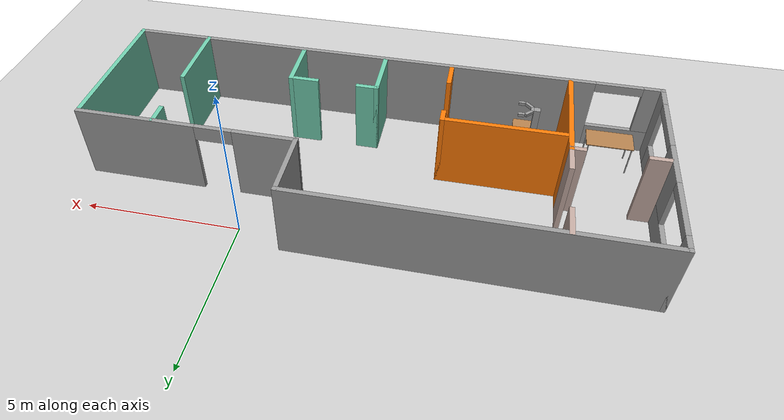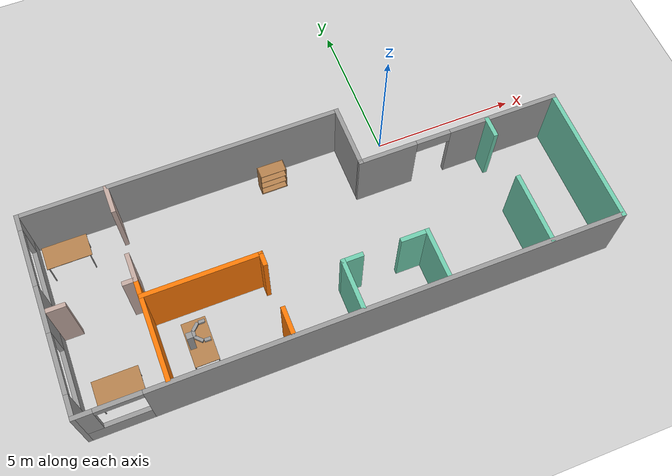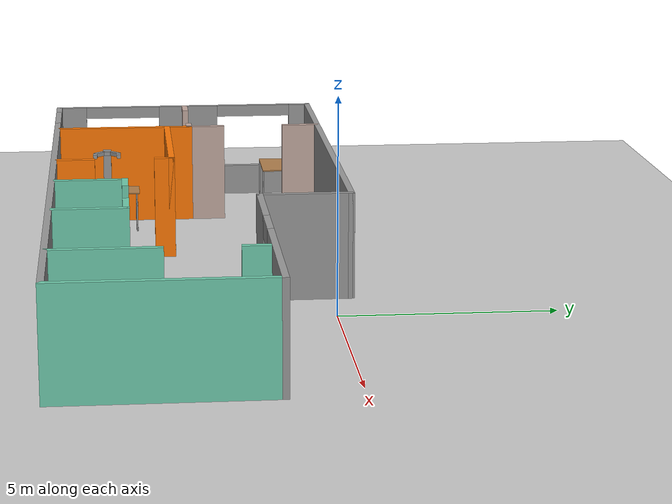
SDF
<sdf version="1.6">
 <world name="default">
  <model name="ground_plane">
   <static>1</static>
   <link name="link">
    <collision name="collision">
     <geometry><plane><normal>0 0 1</normal><size>100 100</size></plane></geometry>
     <surface>
      <contact><collide_bitmask>65535</collide_bitmask></contact>
      <friction><ode><mu>100</mu><mu2>50</mu2></ode></friction>
     </surface>
    </collision>
    <visual name="visual">
     <cast_shadows>0</cast_shadows>
     <geometry><plane><normal>0 0 1</normal><size>100 100</size></plane></geometry>
     <material>
      <script><uri>file://media/materials/scripts/gazebo.material</uri><name>Gazebo/Grey</name></script>
     </material>
    </visual>
   </link>
  </model>
  <model name="Building">
   <pose>-3.41597 -2.95014 0 0 -0 0</pose>
   <link name="Wall_12">
    <collision name="Wall_12_Collision">
     <geometry><box><size>3.5 0.15 2.5</size></box></geometry>
     <pose>0 0 1.25 0 -0 0</pose>
    </collision>
    <visual name="Wall_12_Visual">
     <pose>0 0 1.25 0 -0 0</pose>
     <geometry><box><size>3.5 0.15 2.5</size></box></geometry>
     <material>
      <script><uri>file://media/materials/scripts/gazebo.material</uri><name>Gazebo/Grey</name></script>
      <ambient>0.996078 0.47451 0.0196078 1</ambient>
     </material>
     <meta><layer>0</layer></meta>
    </visual>
    <pose>-6.04441 -1.64552 0 0 0 -1.5708</pose>
   </link>
   <link name="Wall_16">
    <collision name="Wall_16_Collision">
     <geometry><box><size>11 0.15 2.5</size></box></geometry>
     <pose>0 0 1.25 0 -0 0</pose>
    </collision>
    <visual name="Wall_16_Visual">
     <pose>0 0 1.25 0 -0 0</pose>
     <geometry><box><size>11 0.15 2.5</size></box></geometry>
     <material>
      <script><uri>file://media/materials/scripts/gazebo.material</uri><name>Gazebo/Grey</name></script>
      <ambient>0.462745 0.490196 0.45098 1</ambient>
     </material>
     <meta><layer>0</layer></meta>
    </visual>
    <pose>-3.5 3.425 0 0 -0 0</pose>
   </link>
   <link name="Wall_17">
    <collision name="Wall_17_Collision">
     <geometry><box><size>2.25 0.15 2.5</size></box></geometry>
     <pose>0 0 1.25 0 -0 0</pose>
    </collision>
    <visual name="Wall_17_Visual">
     <pose>0 0 1.25 0 -0 0</pose>
     <geometry><box><size>2.25 0.15 2.5</size></box></geometry>
     <material>
      <script><uri>file://media/materials/scripts/gazebo.material</uri><name>Gazebo/Grey</name></script>
      <ambient>0.462745 0.490196 0.45098 1</ambient>
     </material>
     <meta><layer>0</layer></meta>
    </visual>
    <pose>1.92477 2.37476 0 0 0 -1.57101</pose>
   </link>
   <link name="Wall_18">
    <pose>5.42455 1.32452 0 0 -0 0</pose>
    <visual name="Wall_18_Visual_0">
     <pose>-2.54562 0 1.25 0 -0 0</pose>
     <geometry><box><size>2.05876 0.15 2.5</size></box></geometry>
     <material>
      <script><uri>file://media/materials/scripts/gazebo.material</uri><name>Gazebo/Grey</name></script>
      <ambient>0.462745 0.490196 0.45098 1</ambient>
     </material>
     <meta><layer>0</layer></meta>
    </visual>
    <collision name="Wall_18_Collision_0">
     <geometry><box><size>2.05876 0.15 2.5</size></box></geometry>
     <pose>-2.54562 0 1.25 0 -0 0</pose>
    </collision>
    <visual name="Wall_18_Visual_1">
     <pose>1.62938 0 1.25 0 -0 0</pose>
     <geometry><box><size>3.89124 0.15 2.5</size></box></geometry>
     <material>
      <script><uri>file://media/materials/scripts/gazebo.material</uri><name>Gazebo/Grey</name></script>
      <ambient>0.462745 0.490196 0.45098 1</ambient>
     </material>
     <meta><layer>0</layer></meta>
    </visual>
    <collision name="Wall_18_Collision_1">
     <geometry><box><size>3.89124 0.15 2.5</size></box></geometry>
     <pose>1.62938 0 1.25 0 -0 0</pose>
    </collision>
    <visual name="Wall_18_Visual_2">
     <pose>-0.916243 0 2.25 0 -0 0</pose>
     <geometry><box><size>1.2 0.15 0.5</size></box></geometry>
     <material>
      <script><uri>file://media/materials/scripts/gazebo.material</uri><name>Gazebo/Grey</name></script>
      <ambient>0.462745 0.490196 0.45098 1</ambient>
     </material>
     <meta><layer>0</layer></meta>
    </visual>
    <collision name="Wall_18_Collision_2">
     <geometry><box><size>1.2 0.15 0.5</size></box></geometry>
     <pose>-0.916243 0 2.25 0 -0 0</pose>
    </collision>
   </link>
   <link name="Wall_20">
    <collision name="Wall_20_Collision">
     <geometry><box><size>4 0.15 2.5</size></box></geometry>
     <pose>0 0 1.25 0 -0 0</pose>
    </collision>
    <visual name="Wall_20_Visual">
     <pose>0 0 1.25 0 -0 0</pose>
     <geometry><box><size>4 0.15 2.5</size></box></geometry>
     <material>
      <script><uri>file://media/materials/scripts/gazebo.material</uri><name>Gazebo/Grey</name></script>
      <ambient>0.996078 0.47451 0.0196078 1</ambient>
     </material>
     <meta><layer>0</layer></meta>
    </visual>
    <pose>-4.10848 -0.552329 0 0 -0 0</pose>
   </link>
   <link name="Wall_23">
    <collision name="Wall_23_Collision">
     <geometry><box><size>1.75 0.15 2.5</size></box></geometry>
     <pose>0 0 1.25 0 -0 0</pose>
    </collision>
    <visual name="Wall_23_Visual">
     <pose>0 0 1.25 0 -0 0</pose>
     <geometry><box><size>1.75 0.15 2.5</size></box></geometry>
     <material>
      <script><uri>file://media/materials/scripts/gazebo.material</uri><name>Gazebo/Grey</name></script>
      <ambient>0.435294 0.796078 0.67451 1</ambient>
     </material>
     <meta><layer>0</layer></meta>
    </visual>
    <pose>0.087622 -2.51323 0 0 0 -1.5708</pose>
   </link>
   <link name="Wall_32">
    <collision name="Wall_32_Collision">
     <geometry><box><size>2.5 0.15 2.5</size></box></geometry>
     <pose>0 0 1.25 0 -0 0</pose>
    </collision>
    <visual name="Wall_32_Visual">
     <pose>0 0 1.25 0 -0 0</pose>
     <geometry><box><size>2.5 0.15 2.5</size></box></geometry>
     <material>
      <script><uri>file://media/materials/scripts/gazebo.material</uri><name>Gazebo/Grey</name></script>
      <ambient>0.435294 0.796078 0.67451 1</ambient>
     </material>
     <meta><layer>0</layer></meta>
    </visual>
    <pose>6.4415 -2.22703 0 0 -0 1.5708</pose>
   </link>
   <link name="Wall_34">
    <collision name="Wall_34_Collision">
     <geometry><box><size>1.75 0.15 2.5</size></box></geometry>
     <pose>0 0 1.25 0 -0 0</pose>
    </collision>
    <visual name="Wall_34_Visual">
     <pose>0 0 1.25 0 -0 0</pose>
     <geometry><box><size>1.75 0.15 2.5</size></box></geometry>
     <material>
      <script><uri>file://media/materials/scripts/gazebo.material</uri><name>Gazebo/Grey</name></script>
      <ambient>0.435294 0.796078 0.67451 1</ambient>
     </material>
     <meta><layer>0</layer></meta>
    </visual>
    <pose>2.93762 -2.51323 0 0 0 -1.5708</pose>
   </link>
   <link name="Wall_36">
    <collision name="Wall_36_Collision">
     <geometry><box><size>0.75 0.15 2.5</size></box></geometry>
     <pose>0 0 1.25 0 -0 0</pose>
    </collision>
    <visual name="Wall_36_Visual">
     <pose>0 0 1.25 0 -0 0</pose>
     <geometry><box><size>0.75 0.15 2.5</size></box></geometry>
     <material>
      <script><uri>file://media/materials/scripts/gazebo.material</uri><name>Gazebo/Grey</name></script>
      <ambient>0.435294 0.796078 0.67451 1</ambient>
     </material>
     <meta><layer>0</layer></meta>
    </visual>
    <pose>6.45579 0.997622 0 0 -0 1.5708</pose>
   </link>
   <link name="Wall_38">
    <collision name="Wall_38_Collision">
     <geometry><box><size>0.75 0.15 2.5</size></box></geometry>
     <pose>0 0 1.25 0 -0 0</pose>
    </collision>
    <visual name="Wall_38_Visual">
     <pose>0 0 1.25 0 -0 0</pose>
     <geometry><box><size>0.75 0.15 2.5</size></box></geometry>
     <material>
      <script><uri>file://media/materials/scripts/gazebo.material</uri><name>Gazebo/Grey</name></script>
      <ambient>0.435294 0.796078 0.67451 1</ambient>
     </material>
     <meta><layer>0</layer></meta>
    </visual>
    <pose>0.387622 -1.71323 0 0 -0 0</pose>
   </link>
   <link name="Wall_40">
    <collision name="Wall_40_Collision">
     <geometry><box><size>1 0.15 2.5</size></box></geometry>
     <pose>0 0 1.25 0 -0 0</pose>
    </collision>
    <visual name="Wall_40_Visual">
     <pose>0 0 1.25 0 -0 0</pose>
     <geometry><box><size>1 0.15 2.5</size></box></geometry>
     <material>
      <script><uri>file://media/materials/scripts/gazebo.material</uri><name>Gazebo/Grey</name></script>
      <ambient>0.435294 0.796078 0.67451 1</ambient>
     </material>
     <meta><layer>0</layer></meta>
    </visual>
    <pose>2.51262 -1.71323 0 0 -0 3.14159</pose>
   </link>
   <link name="Wall_43">
    <collision name="Wall_43_Collision">
     <geometry><box><size>0.5 0.15 2.5</size></box></geometry>
     <pose>0 0 1.25 0 -0 0</pose>
    </collision>
    <visual name="Wall_43_Visual">
     <pose>0 0 1.25 0 -0 0</pose>
     <geometry><box><size>0.5 0.15 2.5</size></box></geometry>
     <material>
      <script><uri>file://media/materials/scripts/gazebo.material</uri><name>Gazebo/Grey</name></script>
      <ambient>0.996078 0.47451 0.0196078 1</ambient>
     </material>
     <meta><layer>0</layer></meta>
    </visual>
    <pose>-2.18348 -0.727329 0 0 0 -1.5708</pose>
   </link>
   <link name="Wall_45">
    <collision name="Wall_45_Collision">
     <geometry><box><size>1 0.15 2.5</size></box></geometry>
     <pose>0 0 1.25 0 -0 0</pose>
    </collision>
    <visual name="Wall_45_Visual">
     <pose>0 0 1.25 0 -0 0</pose>
     <geometry><box><size>1 0.15 2.5</size></box></geometry>
     <material>
      <script><uri>file://media/materials/scripts/gazebo.material</uri><name>Gazebo/Grey</name></script>
      <ambient>0.996078 0.47451 0.0196078 1</ambient>
     </material>
     <meta><layer>0</layer></meta>
    </visual>
    <pose>-2.16345 -2.92927 0 0 0 -1.5708</pose>
   </link>
   <link name="Wall_47">
    <collision name="Wall_47_Collision">
     <geometry><box><size>0.5 0.15 2.5</size></box></geometry>
     <pose>0 0 1.25 0 -0 0</pose>
    </collision>
    <visual name="Wall_47_Visual">
     <pose>0 0 1.25 0 -0 0</pose>
     <geometry><box><size>0.5 0.15 2.5</size></box></geometry>
     <material>
      <script><uri>file://media/materials/scripts/gazebo.material</uri><name>Gazebo/Grey</name></script>
      <ambient>0.760784 0.662745 0.627451 1</ambient>
     </material>
     <meta><layer>0</layer></meta>
    </visual>
    <pose>-6.21941 0.029484 0 0 -0 3.14159</pose>
   </link>
   <link name="Wall_49">
    <collision name="Wall_49_Collision">
     <geometry><box><size>0.75 0.15 2.5</size></box></geometry>
     <pose>0 0 1.25 0 -0 0</pose>
    </collision>
    <visual name="Wall_49_Visual">
     <pose>0 0 1.25 0 -0 0</pose>
     <geometry><box><size>0.75 0.15 2.5</size></box></geometry>
     <material>
      <script><uri>file://media/materials/scripts/gazebo.material</uri><name>Gazebo/Grey</name></script>
      <ambient>0.760784 0.662745 0.627451 1</ambient>
     </material>
     <meta><layer>0</layer></meta>
    </visual>
    <pose>-8.58628 0.017111 0 0 -0 3.14159</pose>
   </link>
   <link name="Wall_51">
    <collision name="Wall_51_Collision">
     <geometry><box><size>1 0.15 2.5</size></box></geometry>
     <pose>0 0 1.25 0 -0 0</pose>
    </collision>
    <visual name="Wall_51_Visual">
     <pose>0 0 1.25 0 -0 0</pose>
     <geometry><box><size>1 0.15 2.5</size></box></geometry>
     <material>
      <script><uri>file://media/materials/scripts/gazebo.material</uri><name>Gazebo/Grey</name></script>
      <ambient>0.760784 0.662745 0.627451 1</ambient>
     </material>
     <meta><layer>0</layer></meta>
    </visual>
    <pose>-6.04441 0.454485 0 0 -0 1.5708</pose>
   </link>
   <link name="Wall_55">
    <collision name="Wall_55_Collision">
     <geometry><box><size>1 0.15 2.5</size></box></geometry>
     <pose>0 0 1.25 0 -0 0</pose>
    </collision>
    <visual name="Wall_55_Visual">
     <pose>0 0 1.25 0 -0 0</pose>
     <geometry><box><size>1 0.15 2.5</size></box></geometry>
     <material>
      <script><uri>file://media/materials/scripts/gazebo.material</uri><name>Gazebo/Grey</name></script>
      <ambient>0.760784 0.662745 0.627451 1</ambient>
     </material>
     <meta><layer>0</layer></meta>
    </visual>
    <pose>-6.02797 2.98846 0 0 0 -1.5708</pose>
   </link>
   <link name="Wall_6">
    <collision name="Wall_6_Collision">
     <geometry><box><size>4.75 0.15 2.5</size></box></geometry>
     <pose>0 0 1.25 0 -0 0</pose>
    </collision>
    <visual name="Wall_6_Visual">
     <pose>0 0 1.25 0 -0 0</pose>
     <geometry><box><size>4.75 0.15 2.5</size></box></geometry>
     <material>
      <script><uri>file://media/materials/scripts/gazebo.material</uri><name>Gazebo/Grey</name></script>
      <ambient>0.435294 0.796078 0.67451 1</ambient>
     </material>
     <meta><layer>0</layer></meta>
    </visual>
    <pose>8.925 -1.125 0 0 0 -1.5708</pose>
   </link>
   <link name="Wall_8">
    <pose>0 -3.425 0 0 -0 3.14159</pose>
    <visual name="Wall_8_Visual_0">
     <pose>-1.08419 0 1.25 0 -0 0</pose>
     <geometry><box><size>15.8316 0.15 2.5</size></box></geometry>
     <material>
      <script><uri>file://media/materials/scripts/gazebo.material</uri><name>Gazebo/Grey</name></script>
      <ambient>0.462745 0.490196 0.45098 1</ambient>
     </material>
     <meta><layer>0</layer></meta>
    </visual>
    <collision name="Wall_8_Collision_0">
     <geometry><box><size>15.8316 0.15 2.5</size></box></geometry>
     <pose>-1.08419 0 1.25 0 -0 0</pose>
    </collision>
    <visual name="Wall_8_Visual_1">
     <pose>7.91581 0 0.4 0 -0 0</pose>
     <geometry><box><size>2.16839 0.15 0.8</size></box></geometry>
     <material>
      <script><uri>file://media/materials/scripts/gazebo.material</uri><name>Gazebo/Grey</name></script>
      <ambient>0.462745 0.490196 0.45098 1</ambient>
     </material>
     <meta><layer>0</layer></meta>
    </visual>
    <collision name="Wall_8_Collision_1">
     <geometry><box><size>2.16839 0.15 0.8</size></box></geometry>
     <pose>7.91581 0 0.4 0 -0 0</pose>
    </collision>
    <visual name="Wall_8_Visual_2">
     <pose>8.66581 0 1.65 0 -0 0</pose>
     <geometry><box><size>0.668389 0.15 1.7</size></box></geometry>
     <material>
      <script><uri>file://media/materials/scripts/gazebo.material</uri><name>Gazebo/Grey</name></script>
      <ambient>0.462745 0.490196 0.45098 1</ambient>
     </material>
     <meta><layer>0</layer></meta>
    </visual>
    <collision name="Wall_8_Collision_2">
     <geometry><box><size>0.668389 0.15 1.7</size></box></geometry>
     <pose>8.66581 0 1.65 0 -0 0</pose>
    </collision>
    <visual name="Wall_8_Visual_3">
     <pose>7.58161 0 2.35 0 -0 0</pose>
     <geometry><box><size>1.5 0.15 0.3</size></box></geometry>
     <material>
      <script><uri>file://media/materials/scripts/gazebo.material</uri><name>Gazebo/Grey</name></script>
      <ambient>0.462745 0.490196 0.45098 1</ambient>
     </material>
     <meta><layer>0</layer></meta>
    </visual>
    <collision name="Wall_8_Collision_3">
     <geometry><box><size>1.5 0.15 0.3</size></box></geometry>
     <pose>7.58161 0 2.35 0 -0 0</pose>
    </collision>
   </link>
   <link name="Wall_9">
    <pose>-8.925 0 0 0 -0 1.5708</pose>
    <visual name="Wall_9_Visual_0">
     <pose>-3.09367 0 1.25 0 -0 0</pose>
     <geometry><box><size>0.812669 0.15 2.5</size></box></geometry>
     <material>
      <script><uri>file://media/materials/scripts/gazebo.material</uri><name>Gazebo/Grey</name></script>
      <ambient>0.462745 0.490196 0.45098 1</ambient>
     </material>
     <meta><layer>0</layer></meta>
    </visual>
    <collision name="Wall_9_Collision_0">
     <geometry><box><size>0.812669 0.15 2.5</size></box></geometry>
     <pose>-3.09367 0 1.25 0 -0 0</pose>
    </collision>
    <visual name="Wall_9_Visual_1">
     <pose>0.406335 0 0.4 0 -0 0</pose>
     <geometry><box><size>6.18733 0.15 0.8</size></box></geometry>
     <material>
      <script><uri>file://media/materials/scripts/gazebo.material</uri><name>Gazebo/Grey</name></script>
      <ambient>0.462745 0.490196 0.45098 1</ambient>
     </material>
     <meta><layer>0</layer></meta>
    </visual>
    <collision name="Wall_9_Collision_1">
     <geometry><box><size>6.18733 0.15 0.8</size></box></geometry>
     <pose>0.406335 0 0.4 0 -0 0</pose>
    </collision>
    <visual name="Wall_9_Visual_2">
     <pose>0.115345 0 1.65 0 -0 0</pose>
     <geometry><box><size>1.60535 0.15 1.7</size></box></geometry>
     <material>
      <script><uri>file://media/materials/scripts/gazebo.material</uri><name>Gazebo/Grey</name></script>
      <ambient>0.462745 0.490196 0.45098 1</ambient>
     </material>
     <meta><layer>0</layer></meta>
    </visual>
    <collision name="Wall_9_Collision_2">
     <geometry><box><size>1.60535 0.15 1.7</size></box></geometry>
     <pose>0.115345 0 1.65 0 -0 0</pose>
    </collision>
    <visual name="Wall_9_Visual_3">
     <pose>3.20901 0 1.65 0 -0 0</pose>
     <geometry><box><size>0.581978 0.15 1.7</size></box></geometry>
     <material>
      <script><uri>file://media/materials/scripts/gazebo.material</uri><name>Gazebo/Grey</name></script>
      <ambient>0.462745 0.490196 0.45098 1</ambient>
     </material>
     <meta><layer>0</layer></meta>
    </visual>
    <collision name="Wall_9_Collision_3">
     <geometry><box><size>0.581978 0.15 1.7</size></box></geometry>
     <pose>3.20901 0 1.65 0 -0 0</pose>
    </collision>
    <visual name="Wall_9_Visual_4">
     <pose>-1.68733 0 2.35 0 -0 0</pose>
     <geometry><box><size>2 0.15 0.3</size></box></geometry>
     <material>
      <script><uri>file://media/materials/scripts/gazebo.material</uri><name>Gazebo/Grey</name></script>
      <ambient>0.462745 0.490196 0.45098 1</ambient>
     </material>
     <meta><layer>0</layer></meta>
    </visual>
    <collision name="Wall_9_Collision_4">
     <geometry><box><size>2 0.15 0.3</size></box></geometry>
     <pose>-1.68733 0 2.35 0 -0 0</pose>
    </collision>
    <visual name="Wall_9_Visual_5">
     <pose>1.91802 0 2.35 0 -0 0</pose>
     <geometry><box><size>2 0.15 0.3</size></box></geometry>
     <material>
      <script><uri>file://media/materials/scripts/gazebo.material</uri><name>Gazebo/Grey</name></script>
      <ambient>0.462745 0.490196 0.45098 1</ambient>
     </material>
     <meta><layer>0</layer></meta>
    </visual>
    <collision name="Wall_9_Collision_5">
     <geometry><box><size>2 0.15 0.3</size></box></geometry>
     <pose>1.91802 0 2.35 0 -0 0</pose>
    </collision>
   </link>
   <static>1</static>
  </model>
  <model name="table">
   <static>1</static>
   <link name="link">
    <collision name="surface">
     <pose>0 0 1 0 -0 0</pose>
     <geometry><box><size>1.5 0.8 0.03</size></box></geometry>
     <surface><friction><ode><mu>0.6</mu><mu2>0.6</mu2></ode></friction></surface>
    </collision>
    <visual name="visual1">
     <pose>0 0 1 0 -0 0</pose>
     <geometry><box><size>1.5 0.8 0.03</size></box></geometry>
     <material>
      <script><uri>file://media/materials/scripts/gazebo.material</uri><name>Gazebo/Wood</name></script>
     </material>
    </visual>
    <collision name="front_left_leg">
     <pose>0.68 0.38 0.5 0 -0 0</pose>
     <geometry><cylinder><radius>0.02</radius><length>1</length></cylinder></geometry>
    </collision>
    <visual name="front_left_leg">
     <pose>0.68 0.38 0.5 0 -0 0</pose>
     <geometry><cylinder><radius>0.02</radius><length>1</length></cylinder></geometry>
     <material>
      <script><uri>file://media/materials/scripts/gazebo.material</uri><name>Gazebo/Grey</name></script>
     </material>
    </visual>
    <collision name="front_right_leg">
     <pose>0.68 -0.38 0.5 0 -0 0</pose>
     <geometry><cylinder><radius>0.02</radius><length>1</length></cylinder></geometry>
    </collision>
    <visual name="front_right_leg">
     <pose>0.68 -0.38 0.5 0 -0 0</pose>
     <geometry><cylinder><radius>0.02</radius><length>1</length></cylinder></geometry>
     <material>
      <script><uri>file://media/materials/scripts/gazebo.material</uri><name>Gazebo/Grey</name></script>
     </material>
    </visual>
    <collision name="back_right_leg">
     <pose>-0.68 -0.38 0.5 0 -0 0</pose>
     <geometry><cylinder><radius>0.02</radius><length>1</length></cylinder></geometry>
    </collision>
    <visual name="back_right_leg">
     <pose>-0.68 -0.38 0.5 0 -0 0</pose>
     <geometry><cylinder><radius>0.02</radius><length>1</length></cylinder></geometry>
     <material>
      <script><uri>file://media/materials/scripts/gazebo.material</uri><name>Gazebo/Grey</name></script>
     </material>
    </visual>
    <collision name="back_left_leg">
     <pose>-0.68 0.38 0.5 0 -0 0</pose>
     <geometry><cylinder><radius>0.02</radius><length>1</length></cylinder></geometry>
    </collision>
    <visual name="back_left_leg">
     <pose>-0.68 0.38 0.5 0 -0 0</pose>
     <geometry><cylinder><radius>0.02</radius><length>1</length></cylinder></geometry>
     <material>
      <script><uri>file://media/materials/scripts/gazebo.material</uri><name>Gazebo/Grey</name></script>
     </material>
    </visual>
   </link>
   <pose>-11.3202 -0.485992 0 0 -0 0</pose>
  </model>
  <model name="table_0">
   <static>1</static>
   <link name="link">
    <collision name="surface">
     <pose>0 0 1 0 -0 0</pose>
     <geometry><box><size>1.5 0.8 0.03</size></box></geometry>
     <surface><friction><ode><mu>0.6</mu><mu2>0.6</mu2></ode></friction></surface>
    </collision>
    <visual name="visual1">
     <pose>0 0 1 0 -0 0</pose>
     <geometry><box><size>1.5 0.8 0.03</size></box></geometry>
     <material>
      <script><uri>file://media/materials/scripts/gazebo.material</uri><name>Gazebo/Wood</name></script>
     </material>
    </visual>
    <collision name="front_left_leg">
     <pose>0.68 0.38 0.5 0 -0 0</pose>
     <geometry><cylinder><radius>0.02</radius><length>1</length></cylinder></geometry>
    </collision>
    <visual name="front_left_leg">
     <pose>0.68 0.38 0.5 0 -0 0</pose>
     <geometry><cylinder><radius>0.02</radius><length>1</length></cylinder></geometry>
     <material>
      <script><uri>file://media/materials/scripts/gazebo.material</uri><name>Gazebo/Grey</name></script>
     </material>
    </visual>
    <collision name="front_right_leg">
     <pose>0.68 -0.38 0.5 0 -0 0</pose>
     <geometry><cylinder><radius>0.02</radius><length>1</length></cylinder></geometry>
    </collision>
    <visual name="front_right_leg">
     <pose>0.68 -0.38 0.5 0 -0 0</pose>
     <geometry><cylinder><radius>0.02</radius><length>1</length></cylinder></geometry>
     <material>
      <script><uri>file://media/materials/scripts/gazebo.material</uri><name>Gazebo/Grey</name></script>
     </material>
    </visual>
    <collision name="back_right_leg">
     <pose>-0.68 -0.38 0.5 0 -0 0</pose>
     <geometry><cylinder><radius>0.02</radius><length>1</length></cylinder></geometry>
    </collision>
    <visual name="back_right_leg">
     <pose>-0.68 -0.38 0.5 0 -0 0</pose>
     <geometry><cylinder><radius>0.02</radius><length>1</length></cylinder></geometry>
     <material>
      <script><uri>file://media/materials/scripts/gazebo.material</uri><name>Gazebo/Grey</name></script>
     </material>
    </visual>
    <collision name="back_left_leg">
     <pose>-0.68 0.38 0.5 0 -0 0</pose>
     <geometry><cylinder><radius>0.02</radius><length>1</length></cylinder></geometry>
    </collision>
    <visual name="back_left_leg">
     <pose>-0.68 0.38 0.5 0 -0 0</pose>
     <geometry><cylinder><radius>0.02</radius><length>1</length></cylinder></geometry>
     <material>
      <script><uri>file://media/materials/scripts/gazebo.material</uri><name>Gazebo/Grey</name></script>
     </material>
    </visual>
   </link>
   <pose>-8.22656 -5.02138 0.088089 0 -0 1.5707</pose>
  </model>
  <model name="RobotGripper">
   <link name="link_0">
    <pose>-0.270333 0 -0.375 0 -0 0</pose>
    <inertial>
     <mass>1</mass>
     <inertia>
      <ixx>0.166667</ixx>
      <ixy>0</ixy>
      <ixz>0</ixz>
      <iyy>0.166667</iyy>
      <iyz>0</iyz>
      <izz>0.166667</izz>
     </inertia>
     <pose>0 0 -0.5 0 -0 0</pose>
    </inertial>
    <visual name="visual">
     <geometry><box><size>0.2 0.2 1</size></box></geometry>
     <material>
      <lighting>1</lighting>
      <script><uri>file://media/materials/scripts/gazebo.material</uri><name>Gazebo/Grey</name></script>
      <shader type="pixel"><normal_map>__default__</normal_map></shader>
      <ambient>0.3 0.3 0.3 1</ambient>
      <diffuse>0.7 0.7 0.7 1</diffuse>
      <specular>0.01 0.01 0.01 1</specular>
      <emissive>0 0 0 1</emissive>
     </material>
    </visual>
    <collision name="collision">
     <geometry><box><size>0.2 0.2 1</size></box></geometry>
     <surface>
      <friction>
       <ode><mu>1</mu><mu2>1</mu2><fdir1>0 0 0</fdir1><slip1>0</slip1><slip2>0</slip2></ode>
       <torsional>
        <coefficient>1</coefficient>
        <patch_radius>0</patch_radius>
        <surface_radius>0</surface_radius>
        <use_patch_radius>1</use_patch_radius>
        <ode><slip>0</slip></ode>
       </torsional>
      </friction>
      <bounce><restitution_coefficient>0</restitution_coefficient><threshold>1e+06</threshold></bounce>
      <contact>
       <collide_without_contact>0</collide_without_contact>
       <collide_without_contact_bitmask>1</collide_without_contact_bitmask>
       <collide_bitmask>1</collide_bitmask>
       <ode>
        <soft_cfm>0</soft_cfm>
        <soft_erp>0.2</soft_erp>
        <kp>1e+13</kp>
        <kd>1</kd>
        <max_vel>0.01</max_vel>
        <min_depth>0</min_depth>
       </ode>
       <bullet>
        <split_impulse>1</split_impulse>
        <split_impulse_penetration_threshold>-0.01</split_impulse_penetration_threshold>
        <soft_cfm>0</soft_cfm>
        <soft_erp>0.2</soft_erp>
        <kp>1e+13</kp>
        <kd>1</kd>
       </bullet>
      </contact>
     </surface>
    </collision>
   </link>
   <link name="link_1">
    <pose>-0.120333 0 0.075 0 -0 0</pose>
    <inertial>
     <mass>1</mass>
     <inertia>
      <ixx>0.166667</ixx>
      <ixy>0</ixy>
      <ixz>0</ixz>
      <iyy>0.166667</iyy>
      <iyz>0</iyz>
      <izz>0.166667</izz>
     </inertia>
    </inertial>
    <visual name="visual">
     <geometry><box><size>0.1 0.2 0.1</size></box></geometry>
     <material>
      <lighting>1</lighting>
      <script><uri>file://media/materials/scripts/gazebo.material</uri><name>Gazebo/Grey</name></script>
      <shader type="pixel"><normal_map>__default__</normal_map></shader>
      <ambient>0.3 0.3 0.3 1</ambient>
      <diffuse>0.7 0.7 0.7 1</diffuse>
      <specular>0.01 0.01 0.01 1</specular>
      <emissive>0 0 0 1</emissive>
     </material>
    </visual>
    <collision name="collision">
     <geometry><box><size>0.1 0.2 0.1</size></box></geometry>
     <surface>
      <friction>
       <ode><mu>1</mu><mu2>1</mu2><fdir1>0 0 0</fdir1><slip1>0</slip1><slip2>0</slip2></ode>
       <torsional>
        <coefficient>1</coefficient>
        <patch_radius>0</patch_radius>
        <surface_radius>0</surface_radius>
        <use_patch_radius>1</use_patch_radius>
        <ode><slip>0</slip></ode>
       </torsional>
      </friction>
      <bounce><restitution_coefficient>0</restitution_coefficient><threshold>1e+06</threshold></bounce>
      <contact>
       <collide_without_contact>0</collide_without_contact>
       <collide_without_contact_bitmask>1</collide_without_contact_bitmask>
       <collide_bitmask>1</collide_bitmask>
       <ode>
        <soft_cfm>0</soft_cfm>
        <soft_erp>0.2</soft_erp>
        <kp>1e+13</kp>
        <kd>1</kd>
        <max_vel>0.01</max_vel>
        <min_depth>0</min_depth>
       </ode>
       <bullet>
        <split_impulse>1</split_impulse>
        <split_impulse_penetration_threshold>-0.01</split_impulse_penetration_threshold>
        <soft_cfm>0</soft_cfm>
        <soft_erp>0.2</soft_erp>
        <kp>1e+13</kp>
        <kd>1</kd>
       </bullet>
      </contact>
     </surface>
    </collision>
   </link>
   <link name="link_2">
    <pose>-0.020333 0.2 0.075 0 0 -0.78539</pose>
    <inertial>
     <mass>1</mass>
     <inertia>
      <ixx>0.166667</ixx>
      <ixy>0</ixy>
      <ixz>0</ixz>
      <iyy>0.166667</iyy>
      <iyz>0</iyz>
      <izz>0.166667</izz>
     </inertia>
    </inertial>
    <visual name="visual">
     <geometry><box><size>0.1 0.3 0.1</size></box></geometry>
     <material>
      <lighting>1</lighting>
      <script><uri>file://media/materials/scripts/gazebo.material</uri><name>Gazebo/Grey</name></script>
      <shader type="pixel"><normal_map>__default__</normal_map></shader>
      <ambient>0.3 0.3 0.3 1</ambient>
      <diffuse>0.7 0.7 0.7 1</diffuse>
      <specular>0.01 0.01 0.01 1</specular>
      <emissive>0 0 0 1</emissive>
     </material>
    </visual>
    <collision name="collision">
     <geometry><box><size>0.1 0.3 0.1</size></box></geometry>
     <surface>
      <friction>
       <ode><mu>1</mu><mu2>1</mu2><fdir1>0 0 0</fdir1><slip1>0</slip1><slip2>0</slip2></ode>
       <torsional>
        <coefficient>1</coefficient>
        <patch_radius>0</patch_radius>
        <surface_radius>0</surface_radius>
        <use_patch_radius>1</use_patch_radius>
        <ode><slip>0</slip></ode>
       </torsional>
      </friction>
      <bounce><restitution_coefficient>0</restitution_coefficient><threshold>1e+06</threshold></bounce>
      <contact>
       <collide_without_contact>0</collide_without_contact>
       <collide_without_contact_bitmask>1</collide_without_contact_bitmask>
       <collide_bitmask>1</collide_bitmask>
       <ode>
        <soft_cfm>0</soft_cfm>
        <soft_erp>0.2</soft_erp>
        <kp>1e+13</kp>
        <kd>1</kd>
        <max_vel>0.01</max_vel>
        <min_depth>0</min_depth>
       </ode>
       <bullet>
        <split_impulse>1</split_impulse>
        <split_impulse_penetration_threshold>-0.01</split_impulse_penetration_threshold>
        <soft_cfm>0</soft_cfm>
        <soft_erp>0.2</soft_erp>
        <kp>1e+13</kp>
        <kd>1</kd>
       </bullet>
      </contact>
     </surface>
    </collision>
   </link>
   <link name="link_2_clone">
    <pose>-0.020333 -0.2 0.075 0 -0 0.78539</pose>
    <inertial>
     <mass>1</mass>
     <inertia>
      <ixx>0.166667</ixx>
      <ixy>0</ixy>
      <ixz>0</ixz>
      <iyy>0.166667</iyy>
      <iyz>0</iyz>
      <izz>0.166667</izz>
     </inertia>
    </inertial>
    <visual name="visual">
     <geometry><box><size>0.1 0.3 0.1</size></box></geometry>
     <material>
      <lighting>1</lighting>
      <script><uri>file://media/materials/scripts/gazebo.material</uri><name>Gazebo/Grey</name></script>
      <shader type="pixel"><normal_map>__default__</normal_map></shader>
      <ambient>0.3 0.3 0.3 1</ambient>
      <diffuse>0.7 0.7 0.7 1</diffuse>
      <specular>0.01 0.01 0.01 1</specular>
      <emissive>0 0 0 1</emissive>
     </material>
    </visual>
    <collision name="collision">
     <geometry><box><size>0.1 0.3 0.1</size></box></geometry>
     <surface>
      <friction>
       <ode><mu>1</mu><mu2>1</mu2><fdir1>0 0 0</fdir1><slip1>0</slip1><slip2>0</slip2></ode>
       <torsional>
        <coefficient>1</coefficient>
        <patch_radius>0</patch_radius>
        <surface_radius>0</surface_radius>
        <use_patch_radius>1</use_patch_radius>
        <ode><slip>0</slip></ode>
       </torsional>
      </friction>
      <bounce><restitution_coefficient>0</restitution_coefficient><threshold>1e+06</threshold></bounce>
      <contact>
       <collide_without_contact>0</collide_without_contact>
       <collide_without_contact_bitmask>1</collide_without_contact_bitmask>
       <collide_bitmask>1</collide_bitmask>
       <ode>
        <soft_cfm>0</soft_cfm>
        <soft_erp>0.2</soft_erp>
        <kp>1e+13</kp>
        <kd>1</kd>
        <max_vel>0.01</max_vel>
        <min_depth>0</min_depth>
       </ode>
       <bullet>
        <split_impulse>1</split_impulse>
        <split_impulse_penetration_threshold>-0.01</split_impulse_penetration_threshold>
        <soft_cfm>0</soft_cfm>
        <soft_erp>0.2</soft_erp>
        <kp>1e+13</kp>
        <kd>1</kd>
       </bullet>
      </contact>
     </surface>
    </collision>
   </link>
   <link name="link_3">
    <pose>0.215667 0.3 0.075 0 -0 1.5707</pose>
    <inertial>
     <mass>1</mass>
     <inertia>
      <ixx>0.166667</ixx>
      <ixy>0</ixy>
      <ixz>0</ixz>
      <iyy>0.166667</iyy>
      <iyz>0</iyz>
      <izz>0.166667</izz>
     </inertia>
    </inertial>
    <visual name="visual">
     <geometry><box><size>0.1 0.2 0.1</size></box></geometry>
     <material>
      <lighting>1</lighting>
      <script><uri>file://media/materials/scripts/gazebo.material</uri><name>Gazebo/Grey</name></script>
      <shader type="pixel"><normal_map>__default__</normal_map></shader>
      <ambient>0.3 0.3 0.3 1</ambient>
      <diffuse>0.7 0.7 0.7 1</diffuse>
      <specular>0.01 0.01 0.01 1</specular>
      <emissive>0 0 0 1</emissive>
     </material>
    </visual>
    <collision name="collision">
     <geometry><box><size>0.1 0.2 0.1</size></box></geometry>
     <surface>
      <friction>
       <ode><mu>1</mu><mu2>1</mu2><fdir1>0 0 0</fdir1><slip1>0</slip1><slip2>0</slip2></ode>
       <torsional>
        <coefficient>1</coefficient>
        <patch_radius>0</patch_radius>
        <surface_radius>0</surface_radius>
        <use_patch_radius>1</use_patch_radius>
        <ode><slip>0</slip></ode>
       </torsional>
      </friction>
      <bounce><restitution_coefficient>0</restitution_coefficient><threshold>1e+06</threshold></bounce>
      <contact>
       <collide_without_contact>0</collide_without_contact>
       <collide_without_contact_bitmask>1</collide_without_contact_bitmask>
       <collide_bitmask>1</collide_bitmask>
       <ode>
        <soft_cfm>0</soft_cfm>
        <soft_erp>0.2</soft_erp>
        <kp>1e+13</kp>
        <kd>1</kd>
        <max_vel>0.01</max_vel>
        <min_depth>0</min_depth>
       </ode>
       <bullet>
        <split_impulse>1</split_impulse>
        <split_impulse_penetration_threshold>-0.01</split_impulse_penetration_threshold>
        <soft_cfm>0</soft_cfm>
        <soft_erp>0.2</soft_erp>
        <kp>1e+13</kp>
        <kd>1</kd>
       </bullet>
      </contact>
     </surface>
    </collision>
   </link>
   <link name="link_3_clone">
    <pose>0.215667 -0.3 0.075 0 -0 1.5707</pose>
    <inertial>
     <mass>1</mass>
     <inertia>
      <ixx>0.166667</ixx>
      <ixy>0</ixy>
      <ixz>0</ixz>
      <iyy>0.166667</iyy>
      <iyz>0</iyz>
      <izz>0.166667</izz>
     </inertia>
    </inertial>
    <visual name="visual">
     <geometry><box><size>0.1 0.2 0.1</size></box></geometry>
     <material>
      <lighting>1</lighting>
      <script><uri>file://media/materials/scripts/gazebo.material</uri><name>Gazebo/Grey</name></script>
      <shader type="pixel"><normal_map>__default__</normal_map></shader>
      <ambient>0.3 0.3 0.3 1</ambient>
      <diffuse>0.7 0.7 0.7 1</diffuse>
      <specular>0.01 0.01 0.01 1</specular>
      <emissive>0 0 0 1</emissive>
     </material>
    </visual>
    <collision name="collision">
     <geometry><box><size>0.1 0.2 0.1</size></box></geometry>
     <surface>
      <friction>
       <ode><mu>1</mu><mu2>1</mu2><fdir1>0 0 0</fdir1><slip1>0</slip1><slip2>0</slip2></ode>
       <torsional>
        <coefficient>1</coefficient>
        <patch_radius>0</patch_radius>
        <surface_radius>0</surface_radius>
        <use_patch_radius>1</use_patch_radius>
        <ode><slip>0</slip></ode>
       </torsional>
      </friction>
      <bounce><restitution_coefficient>0</restitution_coefficient><threshold>1e+06</threshold></bounce>
      <contact>
       <collide_without_contact>0</collide_without_contact>
       <collide_without_contact_bitmask>1</collide_without_contact_bitmask>
       <collide_bitmask>1</collide_bitmask>
       <ode>
        <soft_cfm>0</soft_cfm>
        <soft_erp>0.2</soft_erp>
        <kp>1e+13</kp>
        <kd>1</kd>
        <max_vel>0.01</max_vel>
        <min_depth>0</min_depth>
       </ode>
       <bullet>
        <split_impulse>1</split_impulse>
        <split_impulse_penetration_threshold>-0.01</split_impulse_penetration_threshold>
        <soft_cfm>0</soft_cfm>
        <soft_erp>0.2</soft_erp>
        <kp>1e+13</kp>
        <kd>1</kd>
       </bullet>
      </contact>
     </surface>
    </collision>
   </link>
   <joint name="link_0_JOINT_1" type="prismatic">
    <parent>link_0</parent>
    <child>link_1</child>
    <axis>
     <xyz>0 0 1</xyz>
     <use_parent_model_frame>0</use_parent_model_frame>
     <limit>
      <lower>-1.79769e+308</lower>
      <upper>1.79769e+308</upper>
      <effort>-1</effort>
      <velocity>-1</velocity>
     </limit>
     <dynamics>
      <spring_reference>0</spring_reference>
      <spring_stiffness>0</spring_stiffness>
      <damping>0</damping>
     </dynamics>
    </axis>
    <physics>
     <ode><limit><cfm>0</cfm><erp>0.2</erp></limit><suspension><cfm>0</cfm><erp>0.2</erp></suspension></ode>
    </physics>
   </joint>
   <joint name="link_1_JOINT_2" type="revolute">
    <parent>link_1</parent>
    <child>link_2</child>
    <axis>
     <xyz>0 0 1</xyz>
     <use_parent_model_frame>0</use_parent_model_frame>
     <limit>
      <lower>-1.79769e+308</lower>
      <upper>1.79769e+308</upper>
      <effort>-1</effort>
      <velocity>-1</velocity>
     </limit>
     <dynamics>
      <spring_reference>0</spring_reference>
      <spring_stiffness>0</spring_stiffness>
      <damping>0</damping>
     </dynamics>
    </axis>
    <physics>
     <ode><limit><cfm>0</cfm><erp>0.2</erp></limit><suspension><cfm>0</cfm><erp>0.2</erp></suspension></ode>
    </physics>
   </joint>
   <joint name="link_1_JOINT_3" type="revolute">
    <parent>link_1</parent>
    <child>link_2_clone</child>
    <axis>
     <xyz>0 0 1</xyz>
     <use_parent_model_frame>0</use_parent_model_frame>
     <limit>
      <lower>-1.79769e+308</lower>
      <upper>1.79769e+308</upper>
      <effort>-1</effort>
      <velocity>-1</velocity>
     </limit>
     <dynamics>
      <spring_reference>0</spring_reference>
      <spring_stiffness>0</spring_stiffness>
      <damping>0</damping>
     </dynamics>
    </axis>
    <physics>
     <ode><limit><cfm>0</cfm><erp>0.2</erp></limit><suspension><cfm>0</cfm><erp>0.2</erp></suspension></ode>
    </physics>
   </joint>
   <joint name="link_2_JOINT_4" type="revolute">
    <parent>link_2</parent>
    <child>link_3</child>
    <axis>
     <xyz>0 0 1</xyz>
     <use_parent_model_frame>0</use_parent_model_frame>
     <limit>
      <lower>-1.79769e+308</lower>
      <upper>1.79769e+308</upper>
      <effort>-1</effort>
      <velocity>-1</velocity>
     </limit>
     <dynamics>
      <spring_reference>0</spring_reference>
      <spring_stiffness>0</spring_stiffness>
      <damping>0</damping>
     </dynamics>
    </axis>
    <physics>
     <ode><limit><cfm>0</cfm><erp>0.2</erp></limit><suspension><cfm>0</cfm><erp>0.2</erp></suspension></ode>
    </physics>
   </joint>
   <joint name="link_2_clone_JOINT_5" type="revolute">
    <parent>link_2_clone</parent>
    <child>link_3_clone</child>
    <axis>
     <xyz>0 0 1</xyz>
     <use_parent_model_frame>0</use_parent_model_frame>
     <limit>
      <lower>-1.79769e+308</lower>
      <upper>1.79769e+308</upper>
      <effort>-1</effort>
      <velocity>-1</velocity>
     </limit>
     <dynamics>
      <spring_reference>0</spring_reference>
      <spring_stiffness>0</spring_stiffness>
      <damping>0</damping>
     </dynamics>
    </axis>
    <physics>
     <ode><limit><cfm>0</cfm><erp>0.2</erp></limit><suspension><cfm>0</cfm><erp>0.2</erp></suspension></ode>
    </physics>
   </joint>
   <static>0</static>
   <pose>-8.2089 -5.08337 1.97809 3e-06 -8e-06 -0.006834</pose>
  </model>
  <model name="table_1">
   <static>1</static>
   <link name="link">
    <collision name="surface">
     <pose>0 0 1 0 -0 0</pose>
     <geometry><box><size>1.5 0.8 0.03</size></box></geometry>
     <surface><friction><ode><mu>0.6</mu><mu2>0.6</mu2></ode></friction></surface>
    </collision>
    <visual name="visual1">
     <pose>0 0 1 0 -0 0</pose>
     <geometry><box><size>1.5 0.8 0.03</size></box></geometry>
     <material>
      <script><uri>file://media/materials/scripts/gazebo.material</uri><name>Gazebo/Wood</name></script>
     </material>
    </visual>
    <collision name="front_left_leg">
     <pose>0.68 0.38 0.5 0 -0 0</pose>
     <geometry><cylinder><radius>0.02</radius><length>1</length></cylinder></geometry>
    </collision>
    <visual name="front_left_leg">
     <pose>0.68 0.38 0.5 0 -0 0</pose>
     <geometry><cylinder><radius>0.02</radius><length>1</length></cylinder></geometry>
     <material>
      <script><uri>file://media/materials/scripts/gazebo.material</uri><name>Gazebo/Grey</name></script>
     </material>
    </visual>
    <collision name="front_right_leg">
     <pose>0.68 -0.38 0.5 0 -0 0</pose>
     <geometry><cylinder><radius>0.02</radius><length>1</length></cylinder></geometry>
    </collision>
    <visual name="front_right_leg">
     <pose>0.68 -0.38 0.5 0 -0 0</pose>
     <geometry><cylinder><radius>0.02</radius><length>1</length></cylinder></geometry>
     <material>
      <script><uri>file://media/materials/scripts/gazebo.material</uri><name>Gazebo/Grey</name></script>
     </material>
    </visual>
    <collision name="back_right_leg">
     <pose>-0.68 -0.38 0.5 0 -0 0</pose>
     <geometry><cylinder><radius>0.02</radius><length>1</length></cylinder></geometry>
    </collision>
    <visual name="back_right_leg">
     <pose>-0.68 -0.38 0.5 0 -0 0</pose>
     <geometry><cylinder><radius>0.02</radius><length>1</length></cylinder></geometry>
     <material>
      <script><uri>file://media/materials/scripts/gazebo.material</uri><name>Gazebo/Grey</name></script>
     </material>
    </visual>
    <collision name="back_left_leg">
     <pose>-0.68 0.38 0.5 0 -0 0</pose>
     <geometry><cylinder><radius>0.02</radius><length>1</length></cylinder></geometry>
    </collision>
    <visual name="back_left_leg">
     <pose>-0.68 0.38 0.5 0 -0 0</pose>
     <geometry><cylinder><radius>0.02</radius><length>1</length></cylinder></geometry>
     <material>
      <script><uri>file://media/materials/scripts/gazebo.material</uri><name>Gazebo/Grey</name></script>
     </material>
    </visual>
   </link>
   <pose>-10.993 -5.41011 0 0 -0 0</pose>
  </model>
  <model name="bookshelf_0">
   <static>1</static>
   <link name="link">
    <inertial><mass>1</mass></inertial>
    <collision name="back">
     <pose>0 0.005 0.6 0 -0 0</pose>
     <geometry><box><size>0.9 0.01 1.2</size></box></geometry>
    </collision>
    <visual name="visual1">
     <pose>0 0.005 0.6 0 -0 0</pose>
     <geometry><box><size>0.9 0.01 1.2</size></box></geometry>
     <material>
      <script><uri>file://media/materials/scripts/gazebo.material</uri><name>Gazebo/Wood</name></script>
     </material>
    </visual>
    <collision name="left_side">
     <pose>0.45 -0.195 0.6 0 -0 0</pose>
     <geometry><box><size>0.02 0.4 1.2</size></box></geometry>
    </collision>
    <visual name="visual2">
     <pose>0.45 -0.195 0.6 0 -0 0</pose>
     <geometry><box><size>0.02 0.4 1.2</size></box></geometry>
     <material>
      <script><uri>file://media/materials/scripts/gazebo.material</uri><name>Gazebo/Wood</name></script>
     </material>
    </visual>
    <collision name="right_side">
     <pose>-0.45 -0.195 0.6 0 -0 0</pose>
     <geometry><box><size>0.02 0.4 1.2</size></box></geometry>
    </collision>
    <visual name="visual3">
     <pose>-0.45 -0.195 0.6 0 -0 0</pose>
     <geometry><box><size>0.02 0.4 1.2</size></box></geometry>
     <material>
      <script><uri>file://media/materials/scripts/gazebo.material</uri><name>Gazebo/Wood</name></script>
     </material>
    </visual>
    <collision name="bottom">
     <pose>0 -0.195 0.03 0 -0 0</pose>
     <geometry><box><size>0.88 0.4 0.06</size></box></geometry>
    </collision>
    <visual name="visual4">
     <pose>0 -0.195 0.03 0 -0 0</pose>
     <geometry><box><size>0.88 0.4 0.06</size></box></geometry>
     <material>
      <script><uri>file://media/materials/scripts/gazebo.material</uri><name>Gazebo/Wood</name></script>
     </material>
    </visual>
    <collision name="top">
     <pose>0 -0.195 1.19 0 -0 0</pose>
     <geometry><box><size>0.88 0.4 0.02</size></box></geometry>
    </collision>
    <visual name="visual5">
     <pose>0 -0.195 1.19 0 -0 0</pose>
     <geometry><box><size>0.88 0.4 0.02</size></box></geometry>
     <material>
      <script><uri>file://media/materials/scripts/gazebo.material</uri><name>Gazebo/Wood</name></script>
     </material>
    </visual>
    <collision name="low_shelf">
     <pose>0 -0.195 0.43 0 -0 0</pose>
     <geometry><box><size>0.88 0.4 0.02</size></box></geometry>
    </collision>
    <visual name="visual6">
     <pose>0 -0.195 0.43 0 -0 0</pose>
     <geometry><box><size>0.88 0.4 0.02</size></box></geometry>
     <material>
      <script><uri>file://media/materials/scripts/gazebo.material</uri><name>Gazebo/Wood</name></script>
     </material>
    </visual>
    <collision name="high_shelf">
     <pose>0 -0.195 0.8 0 -0 0</pose>
     <geometry><box><size>0.88 0.4 0.02</size></box></geometry>
    </collision>
    <visual name="visual7">
     <pose>0 -0.195 0.8 0 -0 0</pose>
     <geometry><box><size>0.88 0.4 0.02</size></box></geometry>
     <material>
      <script><uri>file://media/materials/scripts/gazebo.material</uri><name>Gazebo/Wood</name></script>
     </material>
    </visual>
   </link>
   <pose>-4.07585 0.077613 0 0 -0 0</pose>
  </model>
 </world>
</sdf>
